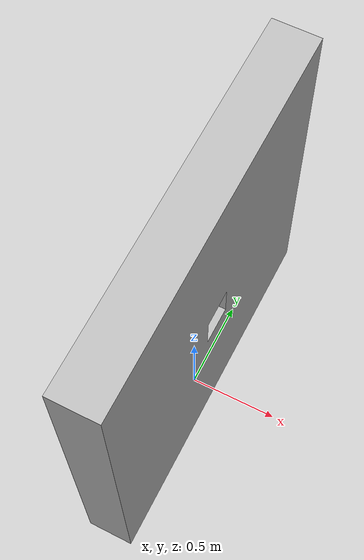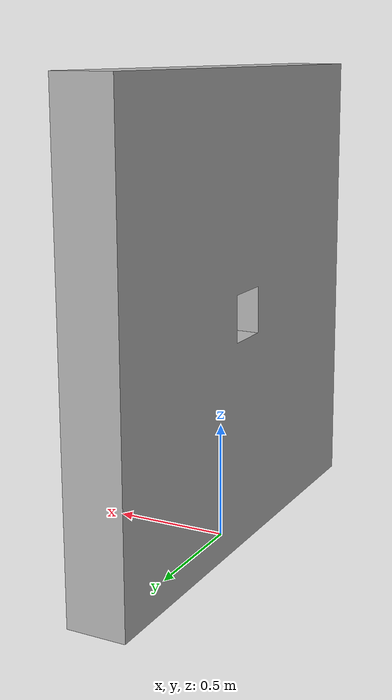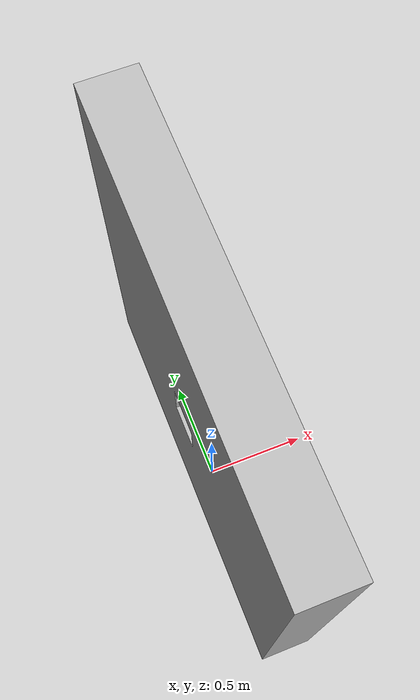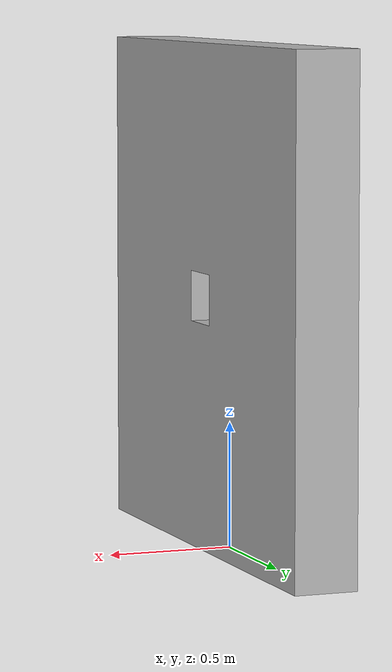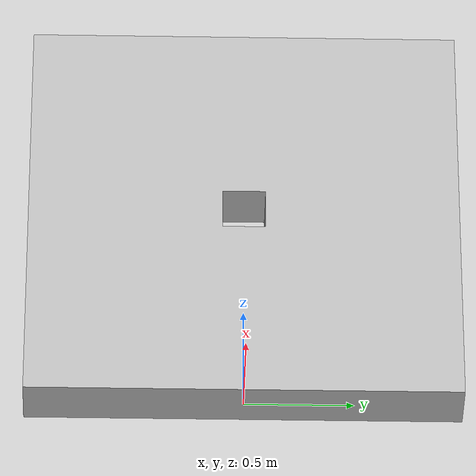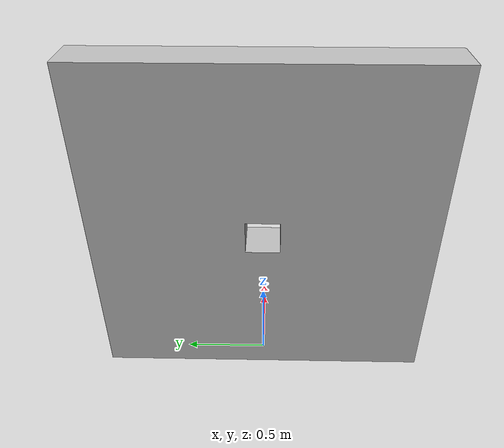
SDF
<?xml version='1.0'?>
<sdf version='1.4'>
  <model name="brick_wall_hole_5">
    <static>true</static>
    <pose>0 0 0 0 0 0</pose>

    <link name="brick_wall_hole_5">
      <visual name="brick_wall_hole_5">
        <geometry>
          <mesh>
            <uri>model://brick_wall_hole_5/brick_wall_hole_5.dae</uri>
          </mesh>
        </geometry>
      </visual>
      <collision name="brick_wall_hole_5">
        <geometry>
          <mesh>
            <uri>model://brick_wall_hole_5/brick_wall_hole_5.dae</uri>
          </mesh>
        </geometry>
      </collision>
    </link>

  </model>
</sdf>
